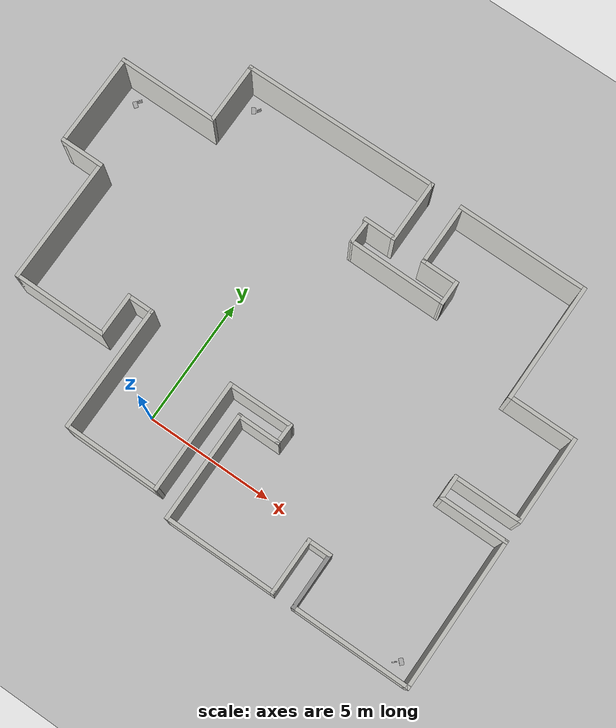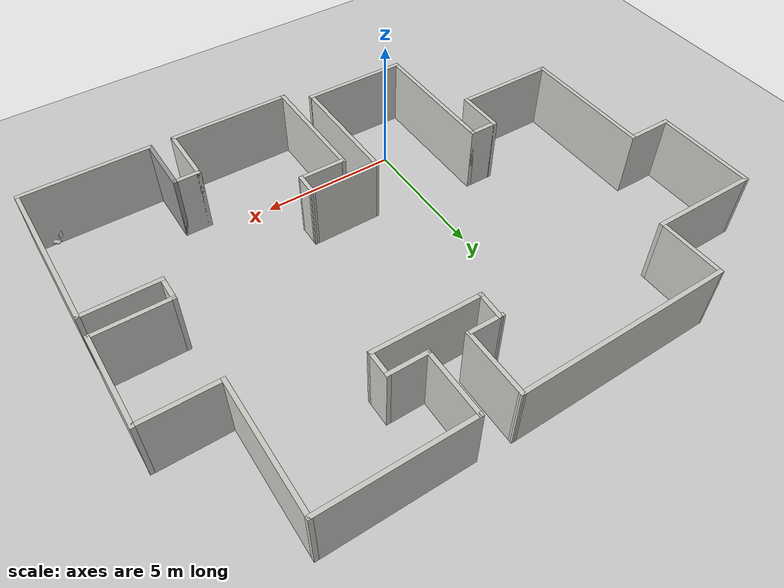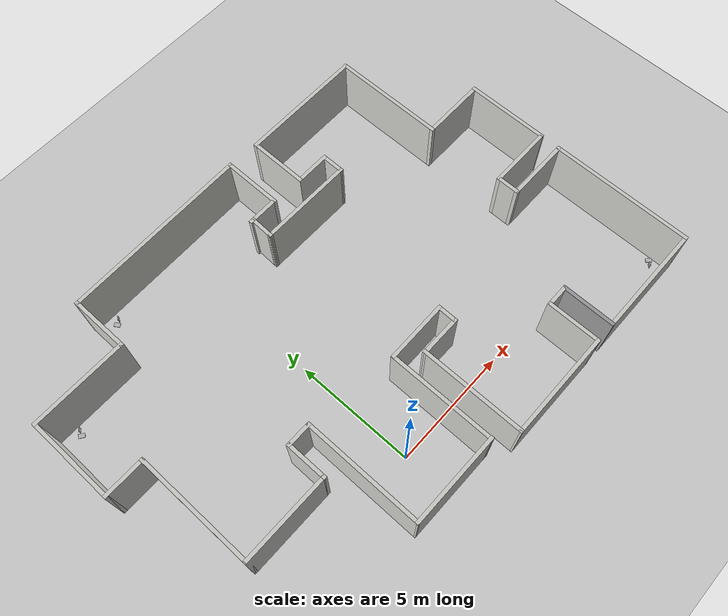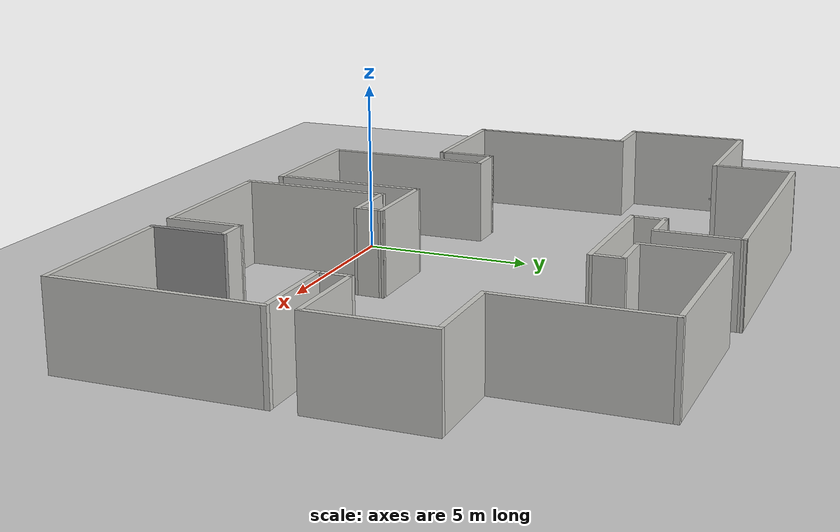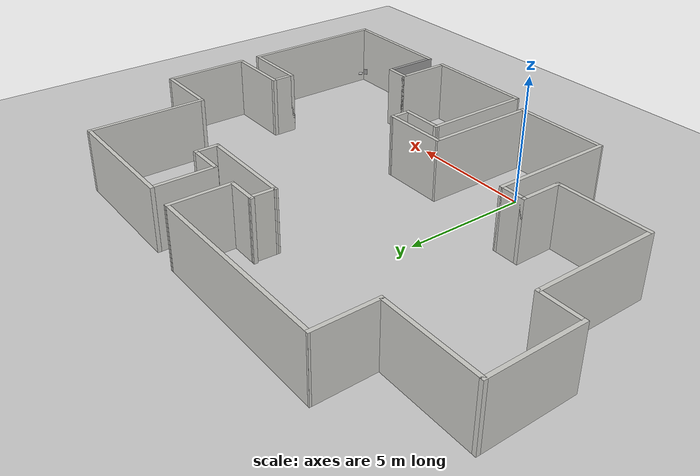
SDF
<sdf version="1.6">
 <world name="default">
  <light name="sun" type="directional">
   <pose>0 0 10 0 -0 0</pose>
   <diffuse>0.8 0.8 0.8 1</diffuse>
   <specular>0.2 0.2 0.2 1</specular>
   <attenuation>
    <range>1000</range>
    <constant>0.9</constant>
    <linear>0.01</linear>
    <quadratic>0.001</quadratic>
   </attenuation>
   <direction>-0.5 0.1 -0.9</direction>
  </light>
  <model name="ground_plane">
   <static>1</static>
   <link name="link">
    <collision name="collision">
     <geometry><plane><normal>0 0 1</normal><size>100 100</size></plane></geometry>
     <surface><friction><ode><mu>100</mu><mu2>50</mu2></ode></friction></surface>
    </collision>
    <visual name="visual">
     <cast_shadows>0</cast_shadows>
     <geometry><plane><normal>0 0 1</normal><size>100 100</size></plane></geometry>
     <material>
      <script><uri>file://media/materials/scripts/gazebo.material</uri><name>Gazebo/Grey</name></script>
     </material>
    </visual>
   </link>
  </model>
  <gravity>0 0 -9.8</gravity>
  <magnetic_field>6e-06 2.3e-05 -4.2e-05</magnetic_field>
  <atmosphere type="adiabatic"/>
  <physics name="default_physics" default="0" type="ode">
   <max_step_size>0.001</max_step_size>
   <real_time_factor>1</real_time_factor>
   <real_time_update_rate>1000</real_time_update_rate>
  </physics>
  <scene><ambient>0.4 0.4 0.4 1</ambient><background>0.7 0.7 0.7 1</background><shadows>1</shadows></scene>
  <audio><device>default</device></audio>
  <spherical_coordinates>
   <surface_model>EARTH_WGS84</surface_model>
   <latitude_deg>0</latitude_deg>
   <longitude_deg>0</longitude_deg>
   <elevation>0</elevation>
   <heading_deg>0</heading_deg>
  </spherical_coordinates>
  <model name="six_rooms_mathias">
   <model name="six_rooms">
    <model name="six_rooms">
     <pose>3e-06 -2e-06 0 0 -0 0</pose>
     <link name="Wall_10">
      <collision name="Wall_10_Collision">
       <geometry><box><size>2.25 0.15 2.5</size></box></geometry>
       <pose>0 0 1.25 0 -0 0</pose>
      </collision>
      <visual name="Wall_10_Visual">
       <pose>0 0 1.25 0 -0 0</pose>
       <geometry><box><size>2.25 0.15 2.5</size></box></geometry>
       <material>
        <script><uri>file://media/materials/scripts/gazebo.material</uri><name>Gazebo/CeilingTiled</name></script>
        <ambient>1 1 1 1</ambient>
       </material>
       <meta><layer>0</layer></meta>
      </visual>
      <pose>4.825 -6.31896 0 0 -0 1.5708</pose>
     </link>
     <link name="Wall_11">
      <collision name="Wall_11_Collision">
       <geometry><box><size>1 0.15 2.5</size></box></geometry>
       <pose>0 0 1.25 0 -0 0</pose>
      </collision>
      <visual name="Wall_11_Visual">
       <pose>0 0 1.25 0 -0 0</pose>
       <geometry><box><size>1 0.15 2.5</size></box></geometry>
       <material>
        <script><uri>file://media/materials/scripts/gazebo.material</uri><name>Gazebo/CeilingTiled</name></script>
        <ambient>1 1 1 1</ambient>
       </material>
       <meta><layer>0</layer></meta>
      </visual>
      <pose>5.25 -5.26896 0 0 -0 0</pose>
     </link>
     <link name="Wall_12">
      <collision name="Wall_12_Collision">
       <geometry><box><size>2.25 0.15 2.5</size></box></geometry>
       <pose>0 0 1.25 0 -0 0</pose>
      </collision>
      <visual name="Wall_12_Visual">
       <pose>0 0 1.25 0 -0 0</pose>
       <geometry><box><size>2.25 0.15 2.5</size></box></geometry>
       <material>
        <script><uri>file://media/materials/scripts/gazebo.material</uri><name>Gazebo/Grey</name></script>
        <ambient>1 1 1 1</ambient>
       </material>
       <meta><layer>0</layer></meta>
      </visual>
      <pose>5.675 -6.31896 0 0 -0 -1.5708</pose>
     </link>
     <link name="Wall_13">
      <collision name="Wall_13_Collision">
       <geometry><box><size>4.75 0.15 2.5</size></box></geometry>
       <pose>0 0 1.25 0 -0 0</pose>
      </collision>
      <visual name="Wall_13_Visual">
       <pose>0 0 1.25 0 -0 0</pose>
       <geometry><box><size>4.75 0.15 2.5</size></box></geometry>
       <material>
        <script><uri>file://media/materials/scripts/gazebo.material</uri><name>Gazebo/CeilingTiled</name></script>
        <ambient>1 1 1 1</ambient>
       </material>
       <meta><layer>0</layer></meta>
      </visual>
      <pose>7.975 -7.36896 0 0 -0 0</pose>
     </link>
     <link name="Wall_14">
      <collision name="Wall_14_Collision">
       <geometry><box><size>6 0.15 2.5</size></box></geometry>
       <pose>0 0 1.25 0 -0 0</pose>
      </collision>
      <visual name="Wall_14_Visual">
       <pose>0 0 1.25 0 -0 0</pose>
       <geometry><box><size>6 0.15 2.5</size></box></geometry>
       <material>
        <script><uri>file://media/materials/scripts/gazebo.material</uri><name>Gazebo/CeilingTiled</name></script>
        <ambient>1 1 1 1</ambient>
       </material>
       <meta><layer>0</layer></meta>
      </visual>
      <pose>10.275 -4.44396 0 0 -0 1.5708</pose>
     </link>
     <link name="Wall_15">
      <collision name="Wall_15_Collision">
       <geometry><box><size>2.75 0.15 2.5</size></box></geometry>
       <pose>0 0 1.25 0 -0 0</pose>
      </collision>
      <visual name="Wall_15_Visual">
       <pose>0 0 1.25 0 -0 0</pose>
       <geometry><box><size>2.75 0.15 2.5</size></box></geometry>
       <material>
        <script><uri>file://media/materials/scripts/gazebo.material</uri><name>Gazebo/CeilingTiled</name></script>
        <ambient>1 1 1 1</ambient>
       </material>
       <meta><layer>0</layer></meta>
      </visual>
      <pose>8.975 -1.51896 0 0 -0 3.14159</pose>
     </link>
     <link name="Wall_16">
      <collision name="Wall_16_Collision">
       <geometry><box><size>1 0.15 2.5</size></box></geometry>
       <pose>0 0 1.25 0 -0 0</pose>
      </collision>
      <visual name="Wall_16_Visual">
       <pose>0 0 1.25 0 -0 0</pose>
       <geometry><box><size>1 0.15 2.5</size></box></geometry>
       <material>
        <script><uri>file://media/materials/scripts/gazebo.material</uri><name>Gazebo/CeilingTiled</name></script>
        <ambient>1 1 1 1</ambient>
       </material>
       <meta><layer>0</layer></meta>
      </visual>
      <pose>7.675 -1.09396 0 0 -0 1.5708</pose>
     </link>
     <link name="Wall_17">
      <collision name="Wall_17_Collision">
       <geometry><box><size>2.66863 0.15 2.5</size></box></geometry>
       <pose>0 0 1.25 0 -0 0</pose>
      </collision>
      <visual name="Wall_17_Visual">
       <pose>0 0 1.25 0 -0 0</pose>
       <geometry><box><size>2.66863 0.15 2.5</size></box></geometry>
       <material>
        <script><uri>file://media/materials/scripts/gazebo.material</uri><name>Gazebo/CeilingTiled</name></script>
        <ambient>1 1 1 1</ambient>
       </material>
       <meta><layer>0</layer></meta>
      </visual>
      <pose>8.93431 -0.668964 0 0 -0 0</pose>
     </link>
     <link name="Wall_18">
      <collision name="Wall_18_Collision">
       <geometry><box><size>3.5 0.15 2.5</size></box></geometry>
       <pose>0 0 1.25 0 -0 0</pose>
      </collision>
      <visual name="Wall_18_Visual">
       <pose>0 0 1.25 0 -0 0</pose>
       <geometry><box><size>3.5 0.15 2.5</size></box></geometry>
       <material>
        <script><uri>file://media/materials/scripts/gazebo.material</uri><name>Gazebo/CeilingTiled</name></script>
        <ambient>1 1 1 1</ambient>
       </material>
       <meta><layer>0</layer></meta>
      </visual>
      <pose>10.275 1.00604 0 0 -0 1.5708</pose>
     </link>
     <link name="Wall_19">
      <collision name="Wall_19_Collision">
       <geometry><box><size>2.66863 0.15 2.5</size></box></geometry>
       <pose>0 0 1.25 0 -0 0</pose>
      </collision>
      <visual name="Wall_19_Visual">
       <pose>0 0 1.25 0 -0 0</pose>
       <geometry><box><size>2.66863 0.15 2.5</size></box></geometry>
       <material>
        <script><uri>file://media/materials/scripts/gazebo.material</uri><name>Gazebo/CeilingTiled</name></script>
        <ambient>1 1 1 1</ambient>
       </material>
       <meta><layer>0</layer></meta>
      </visual>
      <pose>8.93431 2.68104 0 0 -0 3.14159</pose>
     </link>
     <link name="Wall_2">
      <collision name="Wall_2_Collision">
       <geometry><box><size>5 0.15 2.5</size></box></geometry>
       <pose>0 0 1.25 0 -0 0</pose>
      </collision>
      <visual name="Wall_2_Visual">
       <pose>0 0 1.25 0 -0 0</pose>
       <geometry><box><size>5 0.15 2.5</size></box></geometry>
       <material>
        <script><uri>file://media/materials/scripts/gazebo.material</uri><name>Gazebo/CeilingTiled</name></script>
        <ambient>1 1 1 1</ambient>
       </material>
       <meta><layer>0</layer></meta>
      </visual>
      <pose>-4.125 -4.34396 0 0 -0 -1.5708</pose>
     </link>
     <link name="Wall_20">
      <collision name="Wall_20_Collision">
       <geometry><box><size>4.75 0.15 2.5</size></box></geometry>
       <pose>0 0 1.25 0 -0 0</pose>
      </collision>
      <visual name="Wall_20_Visual">
       <pose>0 0 1.25 0 -0 0</pose>
       <geometry><box><size>4.75 0.15 2.5</size></box></geometry>
       <material>
        <script><uri>file://media/materials/scripts/gazebo.material</uri><name>Gazebo/CeilingTiled</name></script>
        <ambient>1 1 1 1</ambient>
       </material>
       <meta><layer>0</layer></meta>
      </visual>
      <pose>7.675 4.98104 0 0 -0 1.5708</pose>
     </link>
     <link name="Wall_21">
      <collision name="Wall_21_Collision">
       <geometry><box><size>5.25 0.15 2.5</size></box></geometry>
       <pose>0 0 1.25 0 -0 0</pose>
      </collision>
      <visual name="Wall_21_Visual">
       <pose>0 0 1.25 0 -0 0</pose>
       <geometry><box><size>5.25 0.15 2.5</size></box></geometry>
       <material>
        <script><uri>file://media/materials/scripts/gazebo.material</uri><name>Gazebo/CeilingTiled</name></script>
        <ambient>1 1 1 1</ambient>
       </material>
       <meta><layer>0</layer></meta>
      </visual>
      <pose>5.125 7.28104 0 0 -0 3.14159</pose>
     </link>
     <link name="Wall_22">
      <collision name="Wall_22_Collision">
       <geometry><box><size>2.5 0.15 2.5</size></box></geometry>
       <pose>0 0 1.25 0 -0 0</pose>
      </collision>
      <visual name="Wall_22_Visual">
       <pose>0 0 1.25 0 -0 0</pose>
       <geometry><box><size>2.5 0.15 2.5</size></box></geometry>
       <material>
        <script><uri>file://media/materials/scripts/gazebo.material</uri><name>Gazebo/CeilingTiled</name></script>
        <ambient>1 1 1 1</ambient>
       </material>
       <meta><layer>0</layer></meta>
      </visual>
      <pose>2.575 6.10604 0 0 -0 -1.5708</pose>
     </link>
     <link name="Wall_23">
      <collision name="Wall_23_Collision">
       <geometry><box><size>1.5 0.15 2.5</size></box></geometry>
       <pose>0 0 1.25 0 -0 0</pose>
      </collision>
      <visual name="Wall_23_Visual">
       <pose>0 0 1.25 0 -0 0</pose>
       <geometry><box><size>1.5 0.15 2.5</size></box></geometry>
       <material>
        <script><uri>file://media/materials/scripts/gazebo.material</uri><name>Gazebo/CeilingTiled</name></script>
        <ambient>1 1 1 1</ambient>
       </material>
       <meta><layer>0</layer></meta>
      </visual>
      <pose>3.25 4.93103 0 0 -0 0</pose>
     </link>
     <link name="Wall_24">
      <collision name="Wall_24_Collision">
       <geometry><box><size>1 0.15 2.5</size></box></geometry>
       <pose>0 0 1.25 0 -0 0</pose>
      </collision>
      <visual name="Wall_24_Visual">
       <pose>0 0 1.25 0 -0 0</pose>
       <geometry><box><size>1 0.15 2.5</size></box></geometry>
       <material>
        <script><uri>file://media/materials/scripts/gazebo.material</uri><name>Gazebo/CeilingTiled</name></script>
        <ambient>1 1 1 1</ambient>
       </material>
       <meta><layer>0</layer></meta>
      </visual>
      <pose>3.925 4.50604 0 0 -0 -1.5708</pose>
     </link>
     <link name="Wall_25">
      <collision name="Wall_25_Collision">
       <geometry><box><size>3.95187 0.15 2.5</size></box></geometry>
       <pose>0 0 1.25 0 -0 0</pose>
      </collision>
      <visual name="Wall_25_Visual">
       <pose>0 0 1.25 0 -0 0</pose>
       <geometry><box><size>3.95187 0.15 2.5</size></box></geometry>
       <material>
        <script><uri>file://media/materials/scripts/gazebo.material</uri><name>Gazebo/CeilingTiled</name></script>
        <ambient>1 1 1 1</ambient>
       </material>
       <meta><layer>0</layer></meta>
      </visual>
      <pose>2.0241 4.09246 0 0 -0 3.13558</pose>
     </link>
     <link name="Wall_26">
      <collision name="Wall_26_Collision">
       <geometry><box><size>1.06501 0.15 2.5</size></box></geometry>
       <pose>0 0 1.25 0 -0 0</pose>
      </collision>
      <visual name="Wall_26_Visual">
       <pose>0 0 1.25 0 -0 0</pose>
       <geometry><box><size>1.06501 0.15 2.5</size></box></geometry>
       <material>
        <script><uri>file://media/materials/scripts/gazebo.material</uri><name>Gazebo/CeilingTiled</name></script>
        <ambient>1 1 1 1</ambient>
       </material>
       <meta><layer>0</layer></meta>
      </visual>
      <pose>0.139782 4.56109 0 0 -0 1.53453</pose>
     </link>
     <link name="Wall_27">
      <collision name="Wall_27_Collision">
       <geometry><box><size>1.25 0.15 2.5</size></box></geometry>
       <pose>0 0 1.25 0 -0 0</pose>
      </collision>
      <visual name="Wall_27_Visual">
       <pose>0 0 1.25 0 -0 0</pose>
       <geometry><box><size>1.25 0.15 2.5</size></box></geometry>
       <material>
        <script><uri>file://media/materials/scripts/gazebo.material</uri><name>Gazebo/CeilingTiled</name></script>
        <ambient>1 1 1 1</ambient>
       </material>
       <meta><layer>0</layer></meta>
      </visual>
      <pose>0.625 5.0183 0 0 -0 0</pose>
     </link>
     <link name="Wall_28">
      <collision name="Wall_28_Collision">
       <geometry><box><size>2.5 0.15 2.5</size></box></geometry>
       <pose>0 0 1.25 0 -0 0</pose>
      </collision>
      <visual name="Wall_28_Visual">
       <pose>0 0 1.25 0 -0 0</pose>
       <geometry><box><size>2.5 0.15 2.5</size></box></geometry>
       <material>
        <script><uri>file://media/materials/scripts/gazebo.material</uri><name>Gazebo/CeilingTiled</name></script>
        <ambient>1 1 1 1</ambient>
       </material>
       <meta><layer>0</layer></meta>
      </visual>
      <pose>1.25637 6.19329 0 0 -0 1.5708</pose>
     </link>
     <link name="Wall_29">
      <collision name="Wall_29_Collision">
       <geometry><box><size>7.83187 0.15 2.5</size></box></geometry>
       <pose>0 0 1.25 0 -0 0</pose>
      </collision>
      <visual name="Wall_29_Visual">
       <pose>0 0 1.25 0 -0 0</pose>
       <geometry><box><size>7.83187 0.15 2.5</size></box></geometry>
       <material>
        <script><uri>file://media/materials/scripts/gazebo.material</uri><name>Gazebo/CeilingTiled</name></script>
        <ambient>1 1 1 1</ambient>
       </material>
       <meta><layer>0</layer></meta>
      </visual>
      <pose>-2.58432 7.32467 0 0 -0 -3.13023</pose>
     </link>
     <link name="Wall_3">
      <collision name="Wall_3_Collision">
       <geometry><box><size>3.88482 0.15 2.5</size></box></geometry>
       <pose>0 0 1.25 0 -0 0</pose>
      </collision>
      <visual name="Wall_3_Visual">
       <pose>0 0 1.25 0 -0 0</pose>
       <geometry><box><size>3.88482 0.15 2.5</size></box></geometry>
       <material>
        <script><uri>file://media/materials/scripts/gazebo.material</uri><name>Gazebo/CeilingTiled</name></script>
        <ambient>1 1 1 1</ambient>
       </material>
       <meta><layer>0</layer></meta>
      </visual>
      <pose>-2.25761 -6.77771 0 0 -0 -0.004683</pose>
     </link>
     <link name="Wall_30">
      <collision name="Wall_30_Collision">
       <geometry><box><size>2.5 0.15 2.5</size></box></geometry>
       <pose>0 0 1.25 0 -0 0</pose>
      </collision>
      <visual name="Wall_30_Visual">
       <pose>0 0 1.25 0 -0 0</pose>
       <geometry><box><size>2.5 0.15 2.5</size></box></geometry>
       <material>
        <script><uri>file://media/materials/scripts/gazebo.material</uri><name>Gazebo/CeilingTiled</name></script>
        <ambient>1 1 1 1</ambient>
       </material>
       <meta><layer>0</layer></meta>
      </visual>
      <pose>-6.425 6.10604 0 0 -0 -1.5708</pose>
     </link>
     <link name="Wall_31">
      <collision name="Wall_31_Collision">
       <geometry><box><size>4 0.15 2.5</size></box></geometry>
       <pose>0 0 1.25 0 -0 0</pose>
      </collision>
      <visual name="Wall_31_Visual">
       <pose>0 0 1.25 0 -0 0</pose>
       <geometry><box><size>4 0.15 2.5</size></box></geometry>
       <material>
        <script><uri>file://media/materials/scripts/gazebo.material</uri><name>Gazebo/CeilingTiled</name></script>
        <ambient>1 1 1 1</ambient>
       </material>
       <meta><layer>0</layer></meta>
      </visual>
      <pose>-8.35 4.93103 0 0 -0 3.14159</pose>
     </link>
     <link name="Wall_32">
      <collision name="Wall_32_Collision">
       <geometry><box><size>3.75 0.15 2.5</size></box></geometry>
       <pose>0 0 1.25 0 -0 0</pose>
      </collision>
      <visual name="Wall_32_Visual">
       <pose>0 0 1.25 0 -0 0</pose>
       <geometry><box><size>3.75 0.15 2.5</size></box></geometry>
       <material>
        <script><uri>file://media/materials/scripts/gazebo.material</uri><name>Gazebo/CeilingTiled</name></script>
        <ambient>1 1 1 1</ambient>
       </material>
       <meta><layer>0</layer></meta>
      </visual>
      <pose>-10.275 3.13104 0 0 -0 -1.5708</pose>
     </link>
     <link name="Wall_33">
      <collision name="Wall_33_Collision">
       <geometry><box><size>1.75 0.15 2.5</size></box></geometry>
       <pose>0 0 1.25 0 -0 0</pose>
      </collision>
      <visual name="Wall_33_Visual">
       <pose>0 0 1.25 0 -0 0</pose>
       <geometry><box><size>1.75 0.15 2.5</size></box></geometry>
       <material>
        <script><uri>file://media/materials/scripts/gazebo.material</uri><name>Gazebo/CeilingTiled</name></script>
        <ambient>1 1 1 1</ambient>
       </material>
       <meta><layer>0</layer></meta>
      </visual>
      <pose>-9.475 1.33104 0 0 -0 0</pose>
     </link>
     <link name="Wall_34">
      <collision name="Wall_34_Collision">
       <geometry><box><size>5 0.15 2.5</size></box></geometry>
       <pose>0 0 1.25 0 -0 0</pose>
      </collision>
      <visual name="Wall_34_Visual">
       <pose>0 0 1.25 0 -0 0</pose>
       <geometry><box><size>5 0.15 2.5</size></box></geometry>
       <material>
        <script><uri>file://media/materials/scripts/gazebo.material</uri><name>Gazebo/CeilingTiled</name></script>
        <ambient>1 1 1 1</ambient>
       </material>
       <meta><layer>0</layer></meta>
      </visual>
      <pose>-8.675 -1.09396 0 0 -0 -1.5708</pose>
     </link>
     <link name="Wall_35">
      <collision name="Wall_35_Collision">
       <geometry><box><size>3.75 0.15 2.5</size></box></geometry>
       <pose>0 0 1.25 0 -0 0</pose>
      </collision>
      <visual name="Wall_35_Visual">
       <pose>0 0 1.25 0 -0 0</pose>
       <geometry><box><size>3.75 0.15 2.5</size></box></geometry>
       <material>
        <script><uri>file://media/materials/scripts/gazebo.material</uri><name>Gazebo/CeilingTiled</name></script>
        <ambient>1 1 1 1</ambient>
       </material>
       <meta><layer>0</layer></meta>
      </visual>
      <pose>-6.875 -3.51896 0 0 -0 0</pose>
     </link>
     <link name="Wall_36">
      <collision name="Wall_36_Collision">
       <geometry><box><size>1.75 0.15 2.5</size></box></geometry>
       <pose>0 0 1.25 0 -0 0</pose>
      </collision>
      <visual name="Wall_36_Visual">
       <pose>0 0 1.25 0 -0 0</pose>
       <geometry><box><size>1.75 0.15 2.5</size></box></geometry>
       <material>
        <script><uri>file://media/materials/scripts/gazebo.material</uri><name>Gazebo/CeilingTiled</name></script>
        <ambient>1 1 1 1</ambient>
       </material>
       <meta><layer>0</layer></meta>
      </visual>
      <pose>-5.075 -2.71896 0 0 -0 1.5708</pose>
     </link>
     <link name="Wall_37">
      <collision name="Wall_37_Collision">
       <geometry><box><size>1.1 0.15 2.5</size></box></geometry>
       <pose>0 0 1.25 0 -0 0</pose>
      </collision>
      <visual name="Wall_37_Visual">
       <pose>0 0 1.25 0 -0 0</pose>
       <geometry><box><size>1.1 0.15 2.5</size></box></geometry>
       <material>
        <script><uri>file://media/materials/scripts/gazebo.material</uri><name>Gazebo/CeilingTiled</name></script>
        <ambient>1 1 1 1</ambient>
       </material>
       <meta><layer>0</layer></meta>
      </visual>
      <pose>-4.6 -1.91896 0 0 -0 0</pose>
     </link>
     <link name="Wall_4">
      <collision name="Wall_4_Collision">
       <geometry><box><size>4.5 0.15 2.5</size></box></geometry>
       <pose>0 0 1.25 0 -0 0</pose>
      </collision>
      <visual name="Wall_4_Visual">
       <pose>0 0 1.25 0 -0 0</pose>
       <geometry><box><size>4.5 0.15 2.5</size></box></geometry>
       <material>
        <script><uri>file://media/materials/scripts/gazebo.material</uri><name>Gazebo/CeilingTiled</name></script>
        <ambient>1 1 1 1</ambient>
       </material>
       <meta><layer>0</layer></meta>
      </visual>
      <pose>-0.407709 -4.61145 0 0 -0 1.5708</pose>
     </link>
     <link name="Wall_5">
      <collision name="Wall_5_Collision">
       <geometry><box><size>2.61528 0.15 2.5</size></box></geometry>
       <pose>0 0 1.25 0 -0 0</pose>
      </collision>
      <visual name="Wall_5_Visual">
       <pose>0 0 1.25 0 -0 0</pose>
       <geometry><box><size>2.61528 0.15 2.5</size></box></geometry>
       <material>
        <script><uri>file://media/materials/scripts/gazebo.material</uri><name>Gazebo/CeilingTiled</name></script>
        <ambient>1 1 1 1</ambient>
       </material>
       <meta><layer>0</layer></meta>
      </visual>
      <pose>0.84239 -2.42771 0 0 -0 0.007095</pose>
     </link>
     <link name="Wall_6">
      <collision name="Wall_6_Collision">
       <geometry><box><size>0.870069 0.15 2.5</size></box></geometry>
       <pose>0 0 1.25 0 -0 0</pose>
      </collision>
      <visual name="Wall_6_Visual">
       <pose>0 0 1.25 0 -0 0</pose>
       <geometry><box><size>0.870069 0.15 2.5</size></box></geometry>
       <material>
        <script><uri>file://media/materials/scripts/gazebo.material</uri><name>Gazebo/CeilingTiled</name></script>
        <ambient>1 1 1 1</ambient>
       </material>
       <meta><layer>0</layer></meta>
      </visual>
      <pose>2.07 -2.77896 0 0 -0 -1.58468</pose>
     </link>
     <link name="Wall_7">
      <collision name="Wall_7_Collision">
       <geometry><box><size>1.75 0.15 2.5</size></box></geometry>
       <pose>0 0 1.25 0 -0 0</pose>
      </collision>
      <visual name="Wall_7_Visual">
       <pose>0 0 1.25 0 -0 0</pose>
       <geometry><box><size>1.75 0.15 2.5</size></box></geometry>
       <material>
        <script><uri>file://media/materials/scripts/gazebo.material</uri><name>Gazebo/CeilingTiled</name></script>
        <ambient>1 1 1 1</ambient>
       </material>
       <meta><layer>0</layer></meta>
      </visual>
      <pose>1.265 -3.14896 0 0 -0 3.14159</pose>
     </link>
     <link name="Wall_8">
      <collision name="Wall_8_Collision">
       <geometry><box><size>4.38001 0.15 2.5</size></box></geometry>
       <pose>0 0 1.25 0 -0 0</pose>
      </collision>
      <visual name="Wall_8_Visual">
       <pose>0 0 1.25 0 -0 0</pose>
       <geometry><box><size>4.38001 0.15 2.5</size></box></geometry>
       <material>
        <script><uri>file://media/materials/scripts/gazebo.material</uri><name>Gazebo/CeilingTiled</name></script>
        <ambient>1 1 1 1</ambient>
       </material>
       <meta><layer>0</layer></meta>
      </visual>
      <pose>0.47 -5.25396 0 0 -0 -1.56843</pose>
     </link>
     <link name="Wall_9">
      <collision name="Wall_9_Collision">
       <geometry><box><size>4.5 0.15 2.5</size></box></geometry>
       <pose>0 0 1.25 0 -0 0</pose>
      </collision>
      <visual name="Wall_9_Visual">
       <pose>0 0 1.25 0 -0 0</pose>
       <geometry><box><size>4.5 0.15 2.5</size></box></geometry>
       <material>
        <script><uri>file://media/materials/scripts/gazebo.material</uri><name>Gazebo/CeilingTiled</name></script>
        <ambient>1 1 1 1</ambient>
       </material>
       <meta><layer>0</layer></meta>
      </visual>
      <pose>2.65 -7.36896 0 0 -0 0</pose>
     </link>
     <static>1</static>
    </model>
    <static>0</static>
    <pose>-1e-06 5e-06 0 0 -0 0</pose>
   </model>
   <static>0</static>
   <pose>2.30294 4.76067 0 0 -0 0</pose>
  </model>
  <model name="six_rooms_tables_7">
   <model name="book_1">
    <link name="cover">
     <pose>0 -0.000108 0.015405 0 -0 0</pose>
     <visual name="visual">
      <geometry><box><size>0.245 0.16 0.03</size></box></geometry>
      <material>
       <script>
        <uri>model://book_1/materials/scripts</uri>
        <uri>model://book_1/materials/textures</uri>
        <name>book_1</name>
       </script>
      </material>
     </visual>
     <collision name="collision"><geometry><box><size>0.245 0.16 0.03</size></box></geometry></collision>
    </link>
    <link name="page">
     <pose>0 0.000608 0.015405 0 -0 0</pose>
     <visual name="visual">
      <geometry><box><size>0.24502 0.15862 0.028</size></box></geometry>
      <material>
       <lighting>1</lighting>
       <ambient>1 1 1 1</ambient>
       <diffuse>1 1 1 1</diffuse>
       <specular>0.01 0.01 0.01 1</specular>
       <emissive>0 0 0 1</emissive>
       <shader type="vertex"><normal_map>__default__</normal_map></shader>
      </material>
     </visual>
     <collision name="collision"><geometry><box><size>0.245 0.16 0.03</size></box></geometry></collision>
    </link>
    <static>1</static>
    <pose>-2e-06 2e-06 0 0 -0 2.51101</pose>
   </model>
   <static>0</static>
   <pose>-7.2186 9.01246 0.599334 0 -0 0</pose>
  </model>
  <model name="six_rooms_tables_8">
   <model name="book_11">
    <link name="cover">
     <pose>0 -0.000108 0.015405 0 -0 0</pose>
     <visual name="visual">
      <geometry><box><size>0.245 0.16 0.03</size></box></geometry>
      <material>
       <script>
        <uri>model://book_11/materials/scripts</uri>
        <uri>model://book_11/materials/textures</uri>
        <name>book_11</name>
       </script>
      </material>
     </visual>
     <collision name="collision"><geometry><box><size>0.245 0.16 0.03</size></box></geometry></collision>
    </link>
    <link name="page">
     <pose>0 0.000608 0.015405 0 -0 0</pose>
     <visual name="visual">
      <geometry><box><size>0.24502 0.15862 0.028</size></box></geometry>
      <material>
       <lighting>1</lighting>
       <ambient>1 1 1 1</ambient>
       <diffuse>1 1 1 1</diffuse>
       <specular>0.01 0.01 0.01 1</specular>
       <emissive>0 0 0 1</emissive>
       <shader type="vertex"><normal_map>__default__</normal_map></shader>
      </material>
     </visual>
     <collision name="collision"><geometry><box><size>0.245 0.16 0.03</size></box></geometry></collision>
    </link>
    <static>1</static>
    <pose>0 -4.3e-05 0 0 -0 0</pose>
   </model>
   <static>0</static>
   <pose>-3.54298 11.2983 0.597316 0 -0 2.11913</pose>
  </model>
  <model name="six_rooms_tables_9">
   <model name="book_2">
    <link name="cover">
     <pose>0 -0.000108 0.015405 0 -0 0</pose>
     <visual name="visual">
      <geometry><box><size>0.245 0.16 0.03</size></box></geometry>
      <material>
       <script>
        <uri>model://book_2/materials/scripts</uri>
        <uri>model://book_2/materials/textures</uri>
        <name>book_2</name>
       </script>
      </material>
     </visual>
     <collision name="collision"><geometry><box><size>0.245 0.16 0.03</size></box></geometry></collision>
    </link>
    <link name="page">
     <pose>0 0.000608 0.015405 0 -0 0</pose>
     <visual name="visual">
      <geometry><box><size>0.24502 0.15862 0.028</size></box></geometry>
      <material>
       <lighting>1</lighting>
       <ambient>1 1 1 1</ambient>
       <diffuse>1 1 1 1</diffuse>
       <specular>0.01 0.01 0.01 1</specular>
       <emissive>0 0 0 1</emissive>
       <shader type="vertex"><normal_map>__default__</normal_map></shader>
      </material>
     </visual>
     <collision name="collision"><geometry><box><size>0.245 0.16 0.03</size></box></geometry></collision>
    </link>
    <static>1</static>
    <pose>-1.2e-05 -0 0 0 -0 0</pose>
   </model>
   <static>0</static>
   <pose>12.0098 -1.9702 0.600828 0 0 -0.763418</pose>
  </model>
  <model name="six_rooms_tables_9_clone">
   <model name="book_2">
    <link name="cover">
     <pose>0 -0.000108 0.015405 0 -0 0</pose>
     <visual name="visual">
      <geometry><box><size>0.245 0.16 0.03</size></box></geometry>
      <material>
       <script>
        <uri>model://book_2/materials/scripts</uri>
        <uri>model://book_2/materials/textures</uri>
        <name>book_2</name>
       </script>
      </material>
     </visual>
     <collision name="collision"><geometry><box><size>0.245 0.16 0.03</size></box></geometry></collision>
    </link>
    <link name="page">
     <pose>0 0.000608 0.015405 0 -0 0</pose>
     <visual name="visual">
      <geometry><box><size>0.24502 0.15862 0.028</size></box></geometry>
      <material>
       <lighting>1</lighting>
       <ambient>1 1 1 1</ambient>
       <diffuse>1 1 1 1</diffuse>
       <specular>0.01 0.01 0.01 1</specular>
       <emissive>0 0 0 1</emissive>
       <shader type="vertex"><normal_map>__default__</normal_map></shader>
      </material>
     </visual>
     <collision name="collision"><geometry><box><size>0.245 0.16 0.03</size></box></geometry></collision>
    </link>
    <static>1</static>
    <pose>-1.2e-05 -0 0 0 -0 0</pose>
   </model>
   <static>0</static>
   <pose>-7.13562 9.19597 0.72284 -0.713863 -1.57079 3.14159</pose>
  </model>
  <model name="six_rooms_tables_7_clone">
   <model name="book_1">
    <link name="cover">
     <pose>0 -0.000108 0.015405 0 -0 0</pose>
     <visual name="visual">
      <geometry><box><size>0.245 0.16 0.03</size></box></geometry>
      <material>
       <script>
        <uri>model://book_1/materials/scripts</uri>
        <uri>model://book_1/materials/textures</uri>
        <name>book_1</name>
       </script>
      </material>
     </visual>
     <collision name="collision"><geometry><box><size>0.245 0.16 0.03</size></box></geometry></collision>
    </link>
    <link name="page">
     <pose>0 0.000608 0.015405 0 -0 0</pose>
     <visual name="visual">
      <geometry><box><size>0.24502 0.15862 0.028</size></box></geometry>
      <material>
       <lighting>1</lighting>
       <ambient>1 1 1 1</ambient>
       <diffuse>1 1 1 1</diffuse>
       <specular>0.01 0.01 0.01 1</specular>
       <emissive>0 0 0 1</emissive>
       <shader type="vertex"><normal_map>__default__</normal_map></shader>
      </material>
     </visual>
     <collision name="collision"><geometry><box><size>0.245 0.16 0.03</size></box></geometry></collision>
    </link>
    <static>1</static>
    <pose>-2e-06 2e-06 0 0 -0 2.51101</pose>
   </model>
   <static>0</static>
   <pose>-3.37574 11.3983 0.720217 1.5708 0.946687 0.985064</pose>
  </model>
  <model name="six_rooms_tables_7_clone_0">
   <model name="book_1">
    <link name="cover">
     <pose>0 -0.000108 0.015405 0 -0 0</pose>
     <visual name="visual">
      <geometry><box><size>0.245 0.16 0.03</size></box></geometry>
      <material>
       <script>
        <uri>model://book_1/materials/scripts</uri>
        <uri>model://book_1/materials/textures</uri>
        <name>book_1</name>
       </script>
      </material>
     </visual>
     <collision name="collision"><geometry><box><size>0.245 0.16 0.03</size></box></geometry></collision>
    </link>
    <link name="page">
     <pose>0 0.000608 0.015405 0 -0 0</pose>
     <visual name="visual">
      <geometry><box><size>0.24502 0.15862 0.028</size></box></geometry>
      <material>
       <lighting>1</lighting>
       <ambient>1 1 1 1</ambient>
       <diffuse>1 1 1 1</diffuse>
       <specular>0.01 0.01 0.01 1</specular>
       <emissive>0 0 0 1</emissive>
       <shader type="vertex"><normal_map>__default__</normal_map></shader>
      </material>
     </visual>
     <collision name="collision"><geometry><box><size>0.245 0.16 0.03</size></box></geometry></collision>
    </link>
    <static>1</static>
    <pose>-2e-06 2e-06 0 0 -0 2.51101</pose>
   </model>
   <static>0</static>
   <pose>11.83 -2.13212 0.719994 1.53097 0.924572 -2.45039</pose>
  </model>
 </world>
</sdf>
